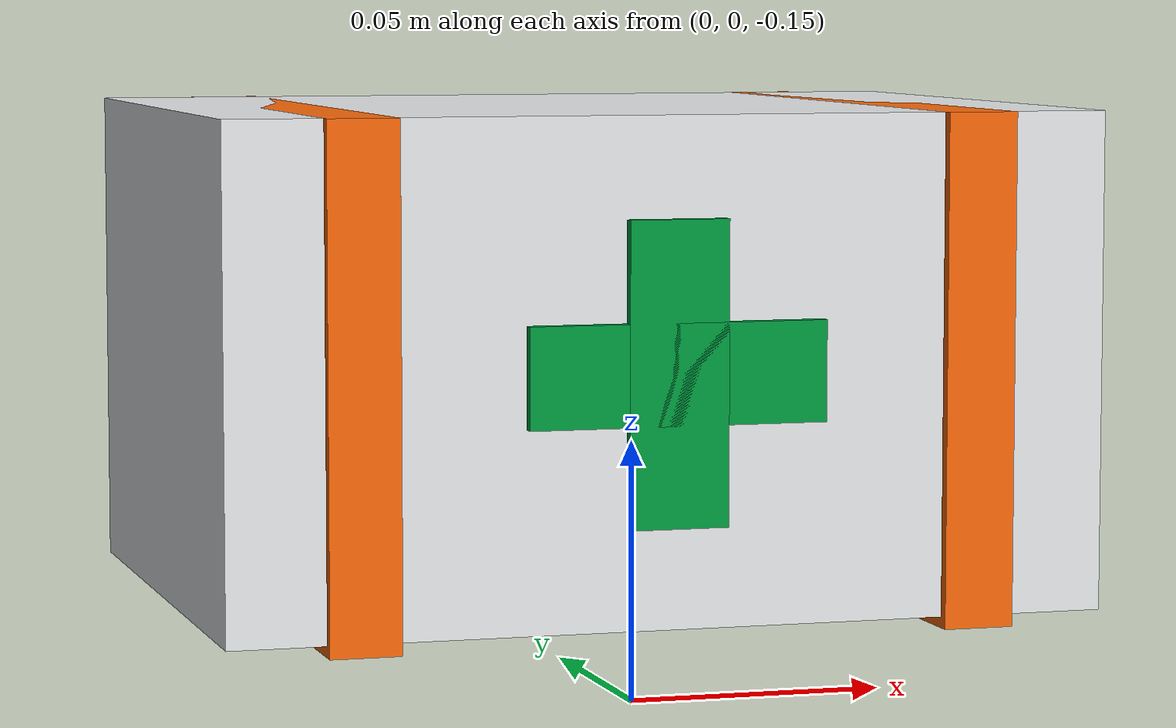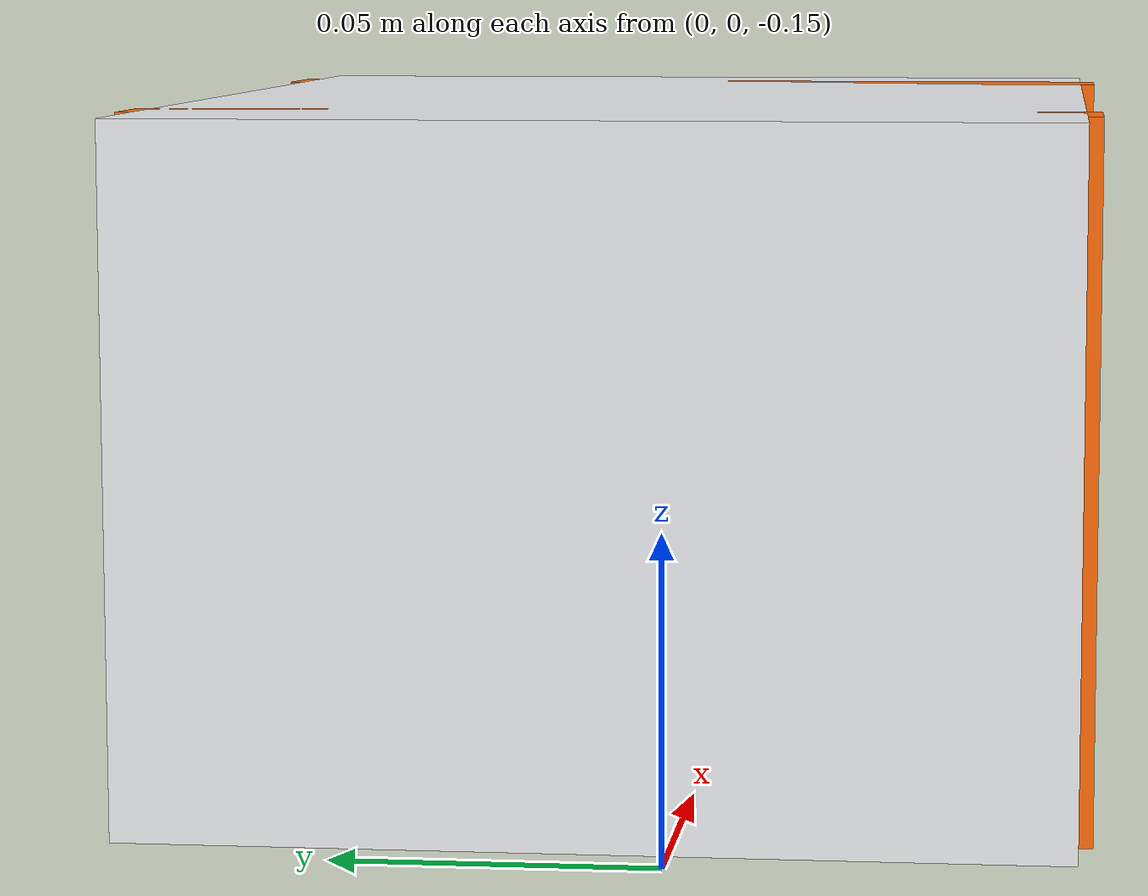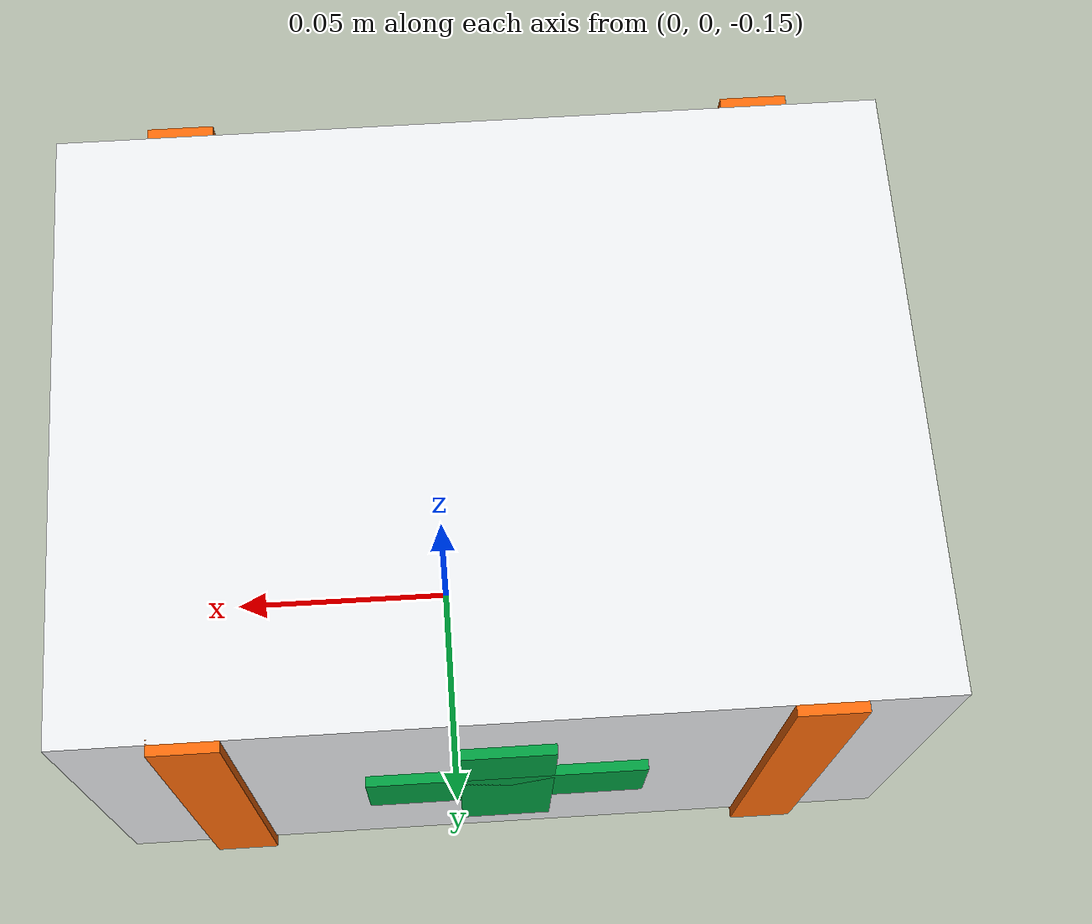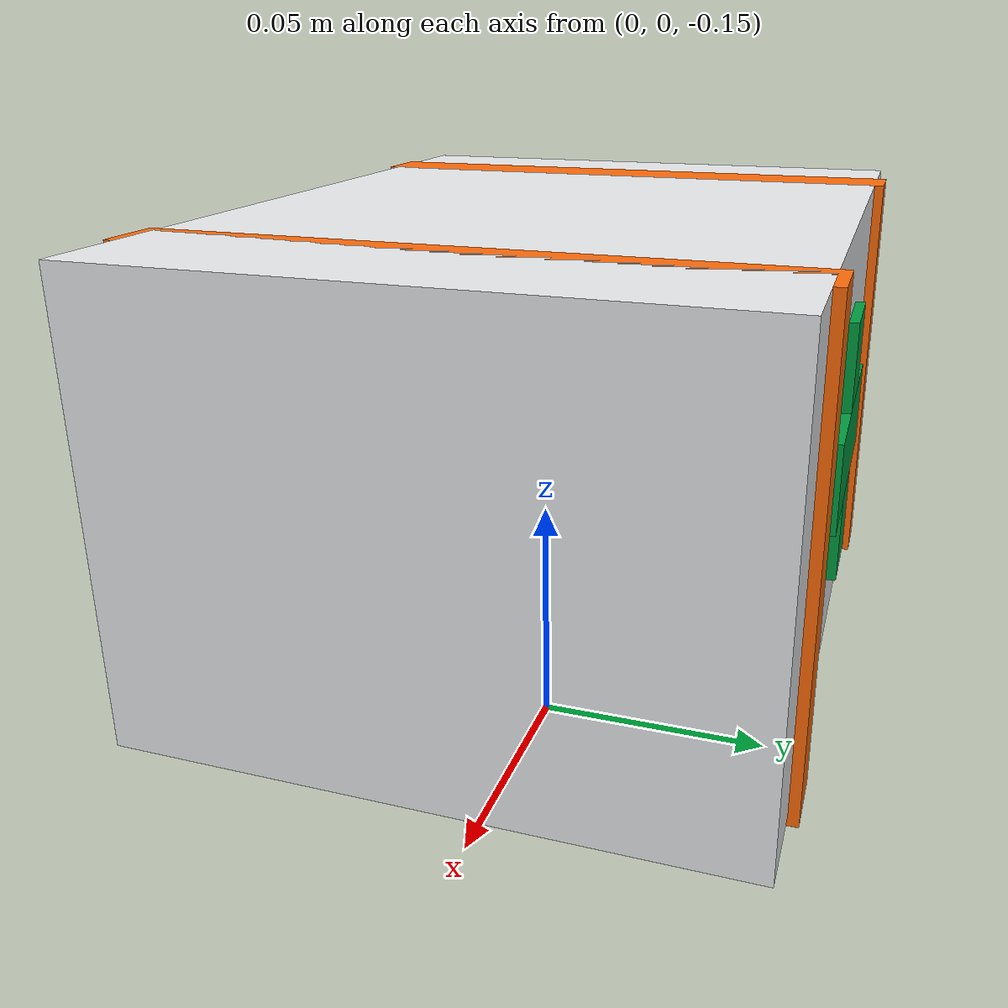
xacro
<?xml version="1.0" ?>
<robot name="care_package" xmlns:xacro="http://ros.org/wiki/xacro">
  <xacro:arg name="variant" default="standard"/>
  <xacro:include filename="$(find 41068_ignition_bringup)/urdf_parrot/care_package.urdf.xacro"/>
  <xacro:care_package_case variant="$(arg variant)"/>
</robot>

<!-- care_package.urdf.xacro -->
<robot xmlns:xacro="http://ros.org/wiki/xacro">

  <xacro:macro name="care_package_dims" params="variant">
    <xacro:if value="${variant not in ['standard', 'large']}">
      ${xacro.fatal('care_package variant must be standard or large, not ' + variant)}
    </xacro:if>
    <xacro:property name="large" value="${variant == 'large'}"/>
    <!-- Below the hull, above and behind the camera lens (z -0.2 standard,
         -0.30 large). The large one is bigger, but not the full 3x. -->
    <xacro:property name="s" value="${1.6 if large else 1.0}" scope="parent"/>
    <xacro:property name="x" value="${-0.03 if large else -0.01}" scope="parent"/>
    <xacro:property name="top_z" value="${-0.12 if large else -0.028}" scope="parent"/>
    <xacro:property name="mass" value="0.02" scope="parent"/>
  </xacro:macro>

  <xacro:macro name="care_package_mount" params="prefix gz_model_name variant">
    <xacro:care_package_dims variant="${variant}"/>
    <xacro:property name="L" value="${0.16 * s}"/>
    <xacro:property name="W" value="${0.12 * s}"/>
    <xacro:property name="plate" value="${0.008 * s}"/>

    <joint name="${prefix}care_package_mount_joint" type="fixed">
      <parent link="${prefix}base_link"/>
      <child link="${prefix}care_package_mount"/>
      <origin xyz="${x} 0 ${top_z}" rpy="0 0 0"/>
    </joint>

    <link name="${prefix}care_package_mount">
      <!-- Mount plate, bolted to the hull -->
      <visual name="mount_plate">
        <origin xyz="0 0 ${-plate / 2}" rpy="0 0 0"/>
        <geometry><box size="${L + 0.02 * s} ${W + 0.02 * s} ${plate}"/></geometry>
        <material name="care_package_dark"><color rgba="0.18 0.19 0.20 1"/></material>
      </visual>

      <!-- Release servo at the back of the plate -->
      <visual name="release_servo">
        <origin xyz="${-L / 2 - 0.012 * s} 0 ${-plate - 0.012 * s}" rpy="0 0 0"/>
        <geometry><box size="${0.024 * s} ${0.04 * s} ${0.024 * s}"/></geometry>
        <material name="care_package_black"><color rgba="0.03 0.03 0.03 1"/></material>
      </visual>
    </link>

    <gazebo>
      <plugin
        filename="ignition-gazebo-detachable-joint-system"
        name="ignition::gazebo::systems::DetachableJoint">
        <parent_link>${prefix}base_link</parent_link>
        <child_model>${gz_model_name}_care_package</child_model>
        <child_link>care_package_link</child_link>
        <detach_topic>/model/${gz_model_name}/care_package/detach</detach_topic>
        <!-- The case is spawned just after the drone, so it is briefly missing. -->
        <suppress_child_warning>true</suppress_child_warning>
      </plugin>
    </gazebo>
  </xacro:macro>

  <xacro:macro name="care_package_case" params="variant">
    <xacro:care_package_dims variant="${variant}"/>
    <xacro:property name="L" value="${0.16 * s}"/>   <!-- case length (x) -->
    <xacro:property name="W" value="${0.12 * s}"/>   <!-- case width (y) -->
    <xacro:property name="H" value="${0.09 * s}"/>   <!-- case height (z) -->
    <xacro:property name="plate" value="${0.008 * s}"/>
    <xacro:property name="t" value="${0.002 * s}"/>  <!-- decal / strap thickness -->
    <!-- Case centre, in the drone's base_link frame. -->
    <xacro:property name="cz" value="${top_z - plate - H / 2}"/>
    <xacro:property name="collision_h" value="0.25"/>
    <xacro:property name="arm" value="${0.6 * W}"/>  <!-- first-aid cross arm length -->
    <xacro:property name="bar" value="${0.2 * W}"/>  <!-- first-aid cross arm width -->

    <link name="care_package_link">
      <inertial>
        <origin xyz="${x} 0 ${cz}" rpy="0 0 0"/>
        <mass value="${mass}"/>
        <!-- Solid box -->
        <inertia ixx="${mass / 12.0 * (W*W + H*H)}" ixy="0" ixz="0"
                 iyy="${mass / 12.0 * (L*L + H*H)}" iyz="0"
                 izz="${mass / 12.0 * (L*L + W*W)}"/>
      </inertial>

      <collision name="case">
        <origin xyz="${x} 0 ${cz - H / 2 + collision_h / 2}" rpy="0 0 0"/>
        <geometry><box size="${L} ${W} ${collision_h}"/></geometry>
      </collision>

      <visual name="case">
        <origin xyz="${x} 0 ${cz}" rpy="0 0 0"/>
        <geometry><box size="${L} ${W} ${H}"/></geometry>
        <material name="care_package_white"><color rgba="0.92 0.93 0.94 1"/></material>
      </visual>

      <!-- Orange straps wrapping round the case, front and back -->
      <xacro:macro name="care_package_strap" params="sx">
        <visual name="strap_${'front' if sx > 0 else 'back'}">
          <origin xyz="${x + sx * 0.35 * L} 0 ${cz - t / 2}" rpy="0 0 0"/>
          <geometry><box size="${0.08 * L} ${W + 2 * t} ${H + t}"/></geometry>
          <material name="care_package_orange"><color rgba="1.0 0.42 0.04 1"/></material>
        </visual>
      </xacro:macro>
      <xacro:care_package_strap sx="1"/>
      <xacro:care_package_strap sx="-1"/>

      <!-- Green crosses on the bottom (seen from below) and on both sides -->
      <visual name="cross_bottom_x">
        <origin xyz="${x} 0 ${cz - H / 2 - t / 2}" rpy="0 0 0"/>
        <geometry><box size="${arm} ${bar} ${t}"/></geometry>
        <material name="care_package_green"><color rgba="0.0 0.62 0.25 1"/></material>
      </visual>
      <visual name="cross_bottom_y">
        <origin xyz="${x} 0 ${cz - H / 2 - t / 2}" rpy="0 0 0"/>
        <geometry><box size="${bar} ${arm} ${t}"/></geometry>
        <material name="care_package_green"><color rgba="0.0 0.62 0.25 1"/></material>
      </visual>
      <xacro:macro name="care_package_side_cross" params="sy">
        <visual name="cross_${'left' if sy > 0 else 'right'}_x">
          <origin xyz="${x} ${sy * (W / 2 + t / 2)} ${cz}" rpy="0 0 0"/>
          <geometry><box size="${0.6 * H} ${t} ${bar * 0.75}"/></geometry>
          <material name="care_package_green"><color rgba="0.0 0.62 0.25 1"/></material>
        </visual>
        <visual name="cross_${'left' if sy > 0 else 'right'}_z">
          <origin xyz="${x} ${sy * (W / 2 + t / 2)} ${cz}" rpy="0 0 0"/>
          <geometry><box size="${bar * 0.75} ${t} ${0.6 * H}"/></geometry>
          <material name="care_package_green"><color rgba="0.0 0.62 0.25 1"/></material>
        </visual>
      </xacro:macro>
      <xacro:care_package_side_cross sy="1"/>
      <xacro:care_package_side_cross sy="-1"/>
    </link>
  </xacro:macro>
</robot>
